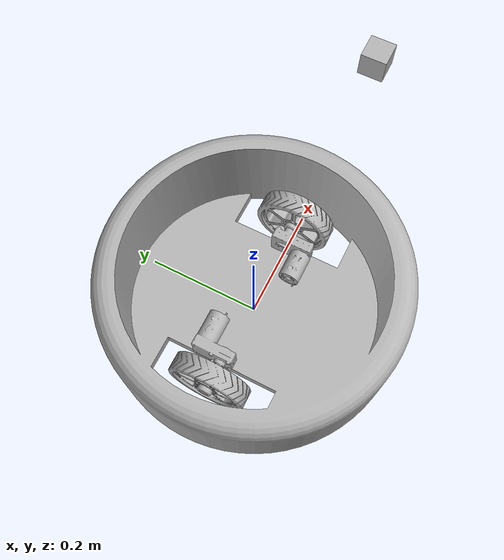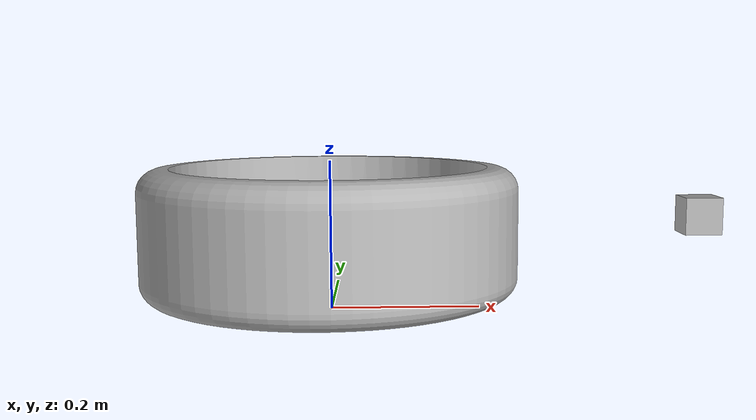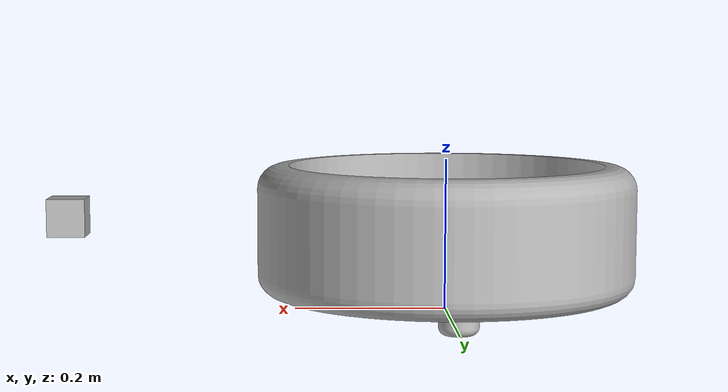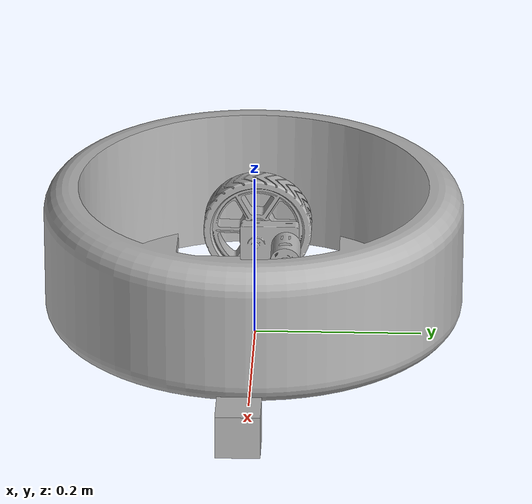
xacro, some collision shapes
<?xml version="1.0" ?>
<robot name="mobile_robot_ust" xmlns:xacro="http://www.ros.org/wiki/xacro">

<xacro:include filename="$(find mobile_robot_ust_description)/urdf/materials.xacro" />
<xacro:include filename="$(find mobile_robot_ust_description)/urdf/mobile_robot_ust.gazebo" />

<link name="base_footprint"/>
<joint name="base_joint" type="fixed">
    <origin xyz="0 0 0" rpy="0 0 0" />
    <parent link="base_footprint"/>
    <child link="base_link" />
</joint>

<link name="base_link">
  <inertial>
    <origin rpy="0 0 0" xyz="1.1224367674413892e-05 -0.0011745211304902412 0.09345651897280045"/>
    <mass value="91.75920794269815"/>
    <inertia ixx="2.445112" ixy="-0.0" ixz="6.3e-05" iyy="2.327332" iyz="0.0" izz="4.289617"/>
  </inertial>
  <visual>
    <origin rpy="0 0 0" xyz="0 0 0"/>
    <geometry>
      <mesh filename="package://mobile_robot_ust_description/meshes/base_link.stl" scale="0.001 0.001 0.001"/>
    </geometry>
    <material name="silver"/>
  </visual>
  <collision>
    <origin rpy="0 0 0" xyz="0 0 0"/>
    <geometry>
      <mesh filename="package://mobile_robot_ust_description/meshes/base_link.stl" scale="0.001 0.001 0.001"/>
    </geometry>
  </collision>
</link>

<link name="left__motor_1_1">
  <inertial>
    <origin rpy="0 0 0" xyz="0.11672239487013364 -0.012131401668074094 0.0012656553309385726"/>
    <mass value="0.6244105331159368"/>
    <inertia ixx="0.000346" ixy="-7.8e-05" ixz="-0.0" iyy="0.000322" iyz="-0.0" izz="0.000476"/>
  </inertial>
  <visual>
    <origin rpy="0 0 0" xyz="-0.0 0.002349 -0.064969"/>
    <geometry>
      <mesh filename="package://mobile_robot_ust_description/meshes/left__motor_1_1.stl" scale="0.001 0.001 0.001"/>
    </geometry>
    <material name="silver"/>
  </visual>
  <collision>
    <origin rpy="0 0 0" xyz="-0.0 0.002349 -0.064969"/>
    <geometry>
      <mesh filename="package://mobile_robot_ust_description/meshes/left__motor_1_1.stl" scale="0.001 0.001 0.001"/>
    </geometry>
  </collision>
</link>

<link name="right_motor_1_1">
  <inertial>
    <origin rpy="0 0 0" xyz="0.003277605930476421 0.014480359001265061 0.0012656553166721929"/>
    <mass value="0.624410471996312"/>
    <inertia ixx="0.000346" ixy="-7.8e-05" ixz="0.0" iyy="0.000322" iyz="0.0" izz="0.000476"/>
  </inertial>
  <visual>
    <origin rpy="0 0 0" xyz="0.12 0.002349 -0.064969"/>
    <geometry>
      <mesh filename="package://mobile_robot_ust_description/meshes/right_motor_1_1.stl" scale="0.001 0.001 0.001"/>
    </geometry>
    <material name="silver"/>
  </visual>
  <collision>
    <origin rpy="0 0 0" xyz="0.12 0.002349 -0.064969"/>
    <geometry>
      <mesh filename="package://mobile_robot_ust_description/meshes/right_motor_1_1.stl" scale="0.001 0.001 0.001"/>
    </geometry>
  </collision>
</link>

<link name="right_wheel_1_1">
  <inertial>
    <origin rpy="0 0 0" xyz="0.020651625000002477 4.788695097536315e-07 -3.394465878520103e-07"/>
    <mass value="1.7115433383420557"/>
    <inertia ixx="0.004743" ixy="-0.0" ixz="-0.0" iyy="0.002492" iyz="0.0" izz="0.002492"/>
  </inertial>
  <visual>
    <origin rpy="0 0 0" xyz="0.1786 0.001925 -0.066235"/>
    <geometry>
      <mesh filename="package://mobile_robot_ust_description/meshes/right_wheel_1_1.stl" scale="0.001 0.001 0.001"/>
    </geometry>
    <material name="silver"/>
  </visual>
  <collision>
    <origin rpy="0 0 0" xyz="0.1786 0.001925 -0.066235"/>
    <geometry>
      <mesh filename="package://mobile_robot_ust_description/meshes/right_wheel_1_1.stl" scale="0.001 0.001 0.001"/>
    </geometry>
  </collision>
</link>

<link name="left_wheel_1_1">
  <inertial>
    <origin rpy="0 0 0" xyz="-0.02065162509005472 4.78699054116342e-07 -3.35564306092051e-07"/>
    <mass value="1.7115433457205622"/>
    <inertia ixx="0.004743" ixy="-0.0" ixz="0.0" iyy="0.002492" iyz="0.0" izz="0.002492"/>
  </inertial>
  <visual>
    <origin rpy="0 0 0" xyz="-0.1786 0.000425 -0.066235"/>
    <geometry>
      <mesh filename="package://mobile_robot_ust_description/meshes/left_wheel_1_1.stl" scale="0.001 0.001 0.001"/>
    </geometry>
    <material name="silver"/>
  </visual>
  <collision>
    <origin rpy="0 0 0" xyz="-0.1786 0.000425 -0.066235"/>
    <geometry>
      <mesh filename="package://mobile_robot_ust_description/meshes/left_wheel_1_1.stl" scale="0.001 0.001 0.001"/>
    </geometry>
  </collision>
</link>

<link name="castor_wheel_1">
  <inertial>
    <origin rpy="0 0 0" xyz="1.371325051413342e-15 0.19117447886950983 -0.03306783712774608"/>
    <mass value="0.3227046646676664"/>
    <inertia ixx="6e-05" ixy="0.0" ixz="0.0" iyy="6e-05" iyz="0.0" izz="9.6e-05"/>
  </inertial>
  <visual>
    <origin rpy="0 0 0" xyz="-0.0 0.002349 -0.044969"/>
    <geometry>
      <mesh filename="package://mobile_robot_ust_description/meshes/castor_wheel_1.stl" scale="0.001 0.001 0.001"/>
    </geometry>
    <material name="silver"/>
  </visual>
  <collision>
    <origin rpy="0 0 0" xyz="-0.0 0.002349 -0.044969"/>
    <geometry>
      <mesh filename="package://mobile_robot_ust_description/meshes/castor_wheel_1.stl" scale="0.001 0.001 0.001"/>
    </geometry>
  </collision>
</link>

<joint name="Rigid2" type="fixed">
  <origin rpy="0 0 0" xyz="0.0 -0.002349 0.064969"/>
  <parent link="base_link"/>
  <child link="left__motor_1_1"/>
</joint>

<joint name="Rigid3" type="fixed">
  <origin rpy="0 0 0" xyz="-0.12 -0.002349 0.064969"/>
  <parent link="base_link"/>
  <child link="right_motor_1_1"/>
</joint>

<joint name="Rev4" type="continuous">
  <origin rpy="0 0 0" xyz="-0.0586 0.000424 0.001266"/>
  <parent link="right_motor_1_1"/>
  <child link="right_wheel_1_1"/>
  <axis xyz="-1.0 0.0 -0.0"/>
</joint>

<joint name="Rev5" type="continuous">
  <origin rpy="0 0 0" xyz="0.1786 0.001924 0.001266"/>
  <parent link="left__motor_1_1"/>
  <child link="left_wheel_1_1"/>
  <axis xyz="1.0 0.0 0.0"/>
</joint>

<joint name="Rigid6" type="fixed">
  <origin rpy="0 0 0" xyz="0.0 -0.002349 0.044969"/>
  <parent link="base_link"/>
  <child link="castor_wheel_1"/>
</joint>

<link name="base_scan">
  <inertial>
    <mass value="1e-5"/>
    <origin xyz="0 0 0" rpy="0 0 0"/>
    <inertia
        ixx="1e-6" ixy="0" ixz="0"
        iyy="1e-6" iyz="0"
        izz="1e-6"/>
  </inertial>

  <visual>
    <origin xyz="0 0 0" rpy="0 0 0"/>
    <geometry>
        <mesh filename="package://test_slam/meshes/sensors/hokuyo.dae"/>
    </geometry>
  </visual>

  <collision>
    <origin xyz="0 0 0" rpy="0 0 0" />
    <geometry>
        <box size="0.05 0.05 0.05"/>
    </geometry>
  </collision>
</link>

<joint type="fixed" name="scan_joint">
  <origin xyz="0.5 0 0.125" rpy="0 0 0"/>
  <child link="base_scan"/>
  <parent link="base_link"/>
  <axis xyz="0 1 0" rpy="0 0 0"/>
</joint>

</robot>

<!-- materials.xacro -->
<robot name="mobile_robot_ust" xmlns:xacro="http://www.ros.org/wiki/xacro" >

<material name="silver">
  <color rgba="0.700 0.700 0.700 1.000"/>
</material>

</robot>

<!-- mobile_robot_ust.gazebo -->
<robot name="mobile_robot_ust" xmlns:xacro="http://www.ros.org/wiki/xacro" >

<xacro:property name="body_color" value="Gazebo/Silver" />

<gazebo reference="base_link">
  <material>${body_color}</material>
  <mu1>0.2</mu1>
  <mu2>0.2</mu2>
  <selfCollide>true</selfCollide>
  <gravity>true</gravity>
</gazebo>

<gazebo reference="left__motor_1_1">
  <material>${body_color}</material>
  <mu1>0.2</mu1>
  <mu2>0.2</mu2>
  <selfCollide>true</selfCollide>
</gazebo>

<gazebo reference="right_motor_1_1">
  <material>${body_color}</material>
  <mu1>0.2</mu1>
  <mu2>0.2</mu2>
  <selfCollide>true</selfCollide>
</gazebo>

<gazebo reference="right_wheel_1_1">
  <material>${body_color}</material>
  <mu1>0.2</mu1>
  <mu2>0.2</mu2>
  <selfCollide>true</selfCollide>
</gazebo>

<gazebo reference="left_wheel_1_1">
  <material>${body_color}</material>
  <mu1>0.2</mu1>
  <mu2>0.2</mu2>
  <selfCollide>true</selfCollide>
</gazebo>

<gazebo reference="castor_wheel_1">
  <material>${body_color}</material>
  <mu1>0.2</mu1>
  <mu2>0.2</mu2>
  <selfCollide>true</selfCollide>
</gazebo>

<!-- Lidar -->
  <gazebo reference="base_scan">
    <sensor type="ray" name="head_hokuyo_sensor">
      <pose>0 0 0 0 0 0</pose>
      <visualize>true</visualize>
      <update_rate>40</update_rate>
      <ray>
        <scan>
          <horizontal>
            <samples>720</samples>
            <resolution>1</resolution>
            <min_angle>-2.655</min_angle>
            <max_angle>2.655</max_angle>
          </horizontal>
        </scan>
        <range>
          <min>0.10</min>
          <max>30.0</max>
          <resolution>0.01</resolution>
        </range>
        <noise>
          <type>gaussian</type>
          <mean>0.0</mean>
          <stddev>0.01</stddev>
        </noise>
      </ray>
      <plugin name="gazebo_ros_head_hokuyo_controller" filename="libgazebo_ros_laser.so">
        <topicName>/scan</topicName>
        <frameName>base_scan</frameName>
      </plugin>
    </sensor>
  </gazebo>

  <gazebo>
    <plugin name="differential_drive_controller" filename="libgazebo_ros_diff_drive.so">
      <legacyMode>false</legacyMode>
      <alwaysOn>true</alwaysOn>
      <updateRate>10</updateRate>
      <leftJoint>Rev5</leftJoint>
      <rightJoint>Rev4</rightJoint>
      <wheelSeparation>0.4</wheelSeparation>
      <wheelDiameter>0.2</wheelDiameter>
      <torque>10</torque>
      <commandTopic>cmd_vel</commandTopic>
      <odometryTopic>odom</odometryTopic>
      <odometryFrame>odom</odometryFrame>
      <robotBaseFrame>base_footprint</robotBaseFrame> <!--base_footprint-->>
      <publishWheelTF>false</publishWheelTF>
      <publishWheelJointState>true</publishWheelJointState>
      <rosDebugLevel>na</rosDebugLevel>
      <wheelAcceleration>0</wheelAcceleration>
      <wheelTorque>5</wheelTorque>
      <odometrySource>world</odometrySource>
      <publishTf>true</publishTf>
      <publishOdomTF>true</publishOdomTF>
    </plugin>
  </gazebo>

</robot>
